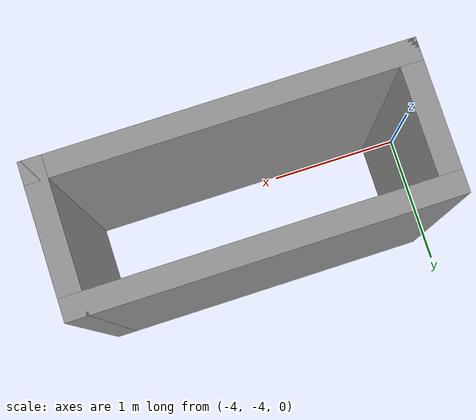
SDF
<?xml version='1.0'?>
<sdf version='1.6'>
  <model name='column25'>
    <pose frame=''>-2.655 -3.665 0 0 -0 0</pose>
    <link name='Wall_0'>
      <collision name='Wall_0_Collision'>
        <geometry>
          <box>
            <size>2.5 0.15 2.5</size>
          </box>
        </geometry>
        <pose frame=''>0 0 1.25 0 -0 0</pose>
      </collision>
      <visual name='Wall_0_Visual'>
        <pose frame=''>0 0 1.25 0 -0 0</pose>
        <geometry>
          <box>
            <size>2.5 0.15 2.5</size>
          </box>
        </geometry>
        <material>
          <script>
            <uri>file://media/materials/scripts/gazebo.material</uri>
            <name>Gazebo/Grey</name>
          </script>
          <ambient>1 1 1 1</ambient>
        </material>
      </visual>
      <pose frame=''>0 -0.425 0 0 -0 0</pose>
    </link>
    <link name='Wall_1'>
      <collision name='Wall_1_Collision'>
        <geometry>
          <box>
            <size>1 0.15 2.5</size>
          </box>
        </geometry>
        <pose frame=''>0 0 1.25 0 -0 0</pose>
      </collision>
      <visual name='Wall_1_Visual'>
        <pose frame=''>0 0 1.25 0 -0 0</pose>
        <geometry>
          <box>
            <size>1 0.15 2.5</size>
          </box>
        </geometry>
        <material>
          <script>
            <uri>file://media/materials/scripts/gazebo.material</uri>
            <name>Gazebo/Grey</name>
          </script>
          <ambient>1 1 1 1</ambient>
        </material>
      </visual>
      <pose frame=''>1.175 0 0 0 -0 1.5708</pose>
    </link>
    <link name='Wall_2'>
      <collision name='Wall_2_Collision'>
        <geometry>
          <box>
            <size>2.5 0.15 2.5</size>
          </box>
        </geometry>
        <pose frame=''>0 0 1.25 0 -0 0</pose>
      </collision>
      <visual name='Wall_2_Visual'>
        <pose frame=''>0 0 1.25 0 -0 0</pose>
        <geometry>
          <box>
            <size>2.5 0.15 2.5</size>
          </box>
        </geometry>
        <material>
          <script>
            <uri>file://media/materials/scripts/gazebo.material</uri>
            <name>Gazebo/Grey</name>
          </script>
          <ambient>1 1 1 1</ambient>
        </material>
      </visual>
      <pose frame=''>0 0.425 0 0 -0 3.14159</pose>
    </link>
    <link name='Wall_3'>
      <collision name='Wall_3_Collision'>
        <geometry>
          <box>
            <size>1 0.15 2.5</size>
          </box>
        </geometry>
        <pose frame=''>0 0 1.25 0 -0 0</pose>
      </collision>
      <visual name='Wall_3_Visual'>
        <pose frame=''>0 0 1.25 0 -0 0</pose>
        <geometry>
          <box>
            <size>1 0.15 2.5</size>
          </box>
        </geometry>
        <material>
          <script>
            <uri>file://media/materials/scripts/gazebo.material</uri>
            <name>Gazebo/Grey</name>
          </script>
          <ambient>1 1 1 1</ambient>
        </material>
      </visual>
      <pose frame=''>-1.175 0 0 0 0 -1.5708</pose>
    </link>
    <static>1</static>
  </model>
</sdf>
